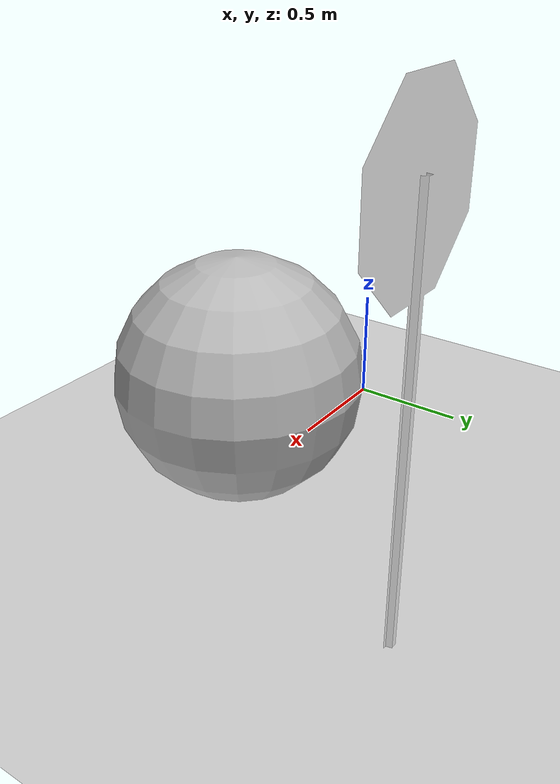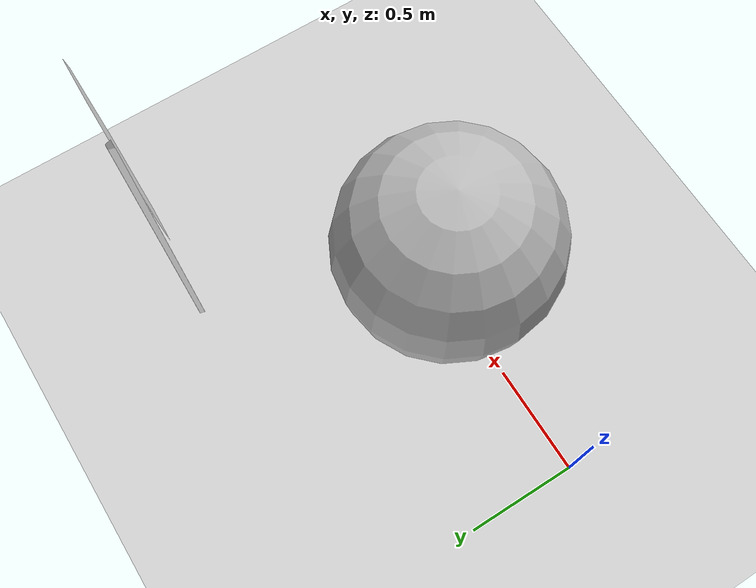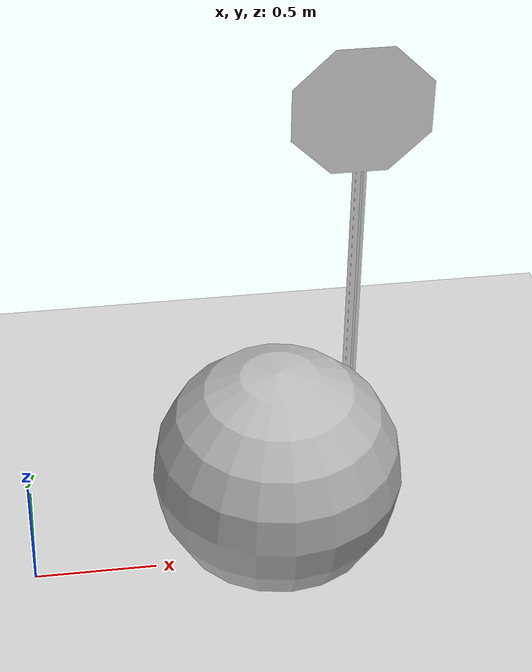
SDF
<sdf version="1.5">
 <world name="default">
  <model name="ground_plane">
   <static>1</static>
   <link name="link">
    <collision name="collision">
     <geometry><plane><normal>0 0 1</normal><size>100 100</size></plane></geometry>
     <surface><friction><ode><mu>100</mu><mu2>50</mu2></ode></friction></surface>
    </collision>
    <visual name="visual">
     <cast_shadows>0</cast_shadows>
     <geometry><plane><normal>0 0 1</normal><size>100 100</size></plane></geometry>
     <material>
      <script><uri>file://media/materials/scripts/gazebo.material</uri><name>Gazebo/Grey</name></script>
     </material>
    </visual>
   </link>
  </model>
  <light name="sun" type="directional">
   <pose>0 0 10 0 -0 0</pose>
   <diffuse>0.8 0.8 0.8 1</diffuse>
   <specular>0.2 0.2 0.2 1</specular>
   <attenuation>
    <range>1000</range>
    <constant>0.9</constant>
    <linear>0.01</linear>
    <quadratic>0.001</quadratic>
   </attenuation>
   <direction>-0.5 0.1 -0.9</direction>
  </light>
  <plugin name="factory" filename="libfactory.so"/>
  <physics name="default_physics" default="0" type="ode">
   <max_step_size>0.001</max_step_size>
   <real_time_factor>1</real_time_factor>
   <real_time_update_rate>1000</real_time_update_rate>
   <gravity>0 0 -9.8</gravity>
   <magnetic_field>6e-06 2.3e-05 -4.2e-05</magnetic_field>
  </physics>
  <scene><ambient>0.4 0.4 0.4 1</ambient><background>0.7 0.7 0.7 1</background><shadows>1</shadows></scene>
  <audio><device>default</device></audio>
  <spherical_coordinates>
   <surface_model>EARTH_WGS84</surface_model>
   <latitude_deg>0</latitude_deg>
   <longitude_deg>0</longitude_deg>
   <elevation>0</elevation>
   <heading_deg>0</heading_deg>
  </spherical_coordinates>
  <model name="unique_sphere">
   <pose>1 0 0 0 -0 0</pose>
   <link name="link">
    <pose>0 0 0.5 0 -0 0</pose>
    <collision name="collision"><geometry><sphere><radius>0.5</radius></sphere></geometry></collision>
    <visual name="visual"><geometry><sphere><radius>0.5</radius></sphere></geometry></visual>
    <inertial>
     <inertia><ixx>1</ixx><ixy>0</ixy><ixz>0</ixz><iyy>1</iyy><iyz>0</iyz><izz>1</izz></inertia>
     <mass>1</mass>
    </inertial>
   </link>
  </model>
  <model name="Stop Sign">
   <link name="link">
    <collision name="collision">
     <geometry><mesh><uri>model://stop_sign/meshes/stop_sign.dae</uri></mesh></geometry>
    </collision>
    <visual name="visual">
     <geometry><mesh><uri>model://stop_sign/meshes/stop_sign.dae</uri></mesh></geometry>
     <material>
      <script>
       <uri>model://stop_sign/materials/scripts</uri>
       <uri>model://stop_sign/materials/textures</uri>
       <name>StopSign/Diffuse</name>
      </script>
     </material>
    </visual>
    <inertial>
     <inertia><ixx>1</ixx><ixy>0</ixy><ixz>0</ixz><iyy>1</iyy><iyz>0</iyz><izz>1</izz></inertia>
     <mass>1</mass>
    </inertial>
   </link>
   <pose>1.48374 1 0 2.4e-05 4e-06 0</pose>
  </model>
 </world>
</sdf>
